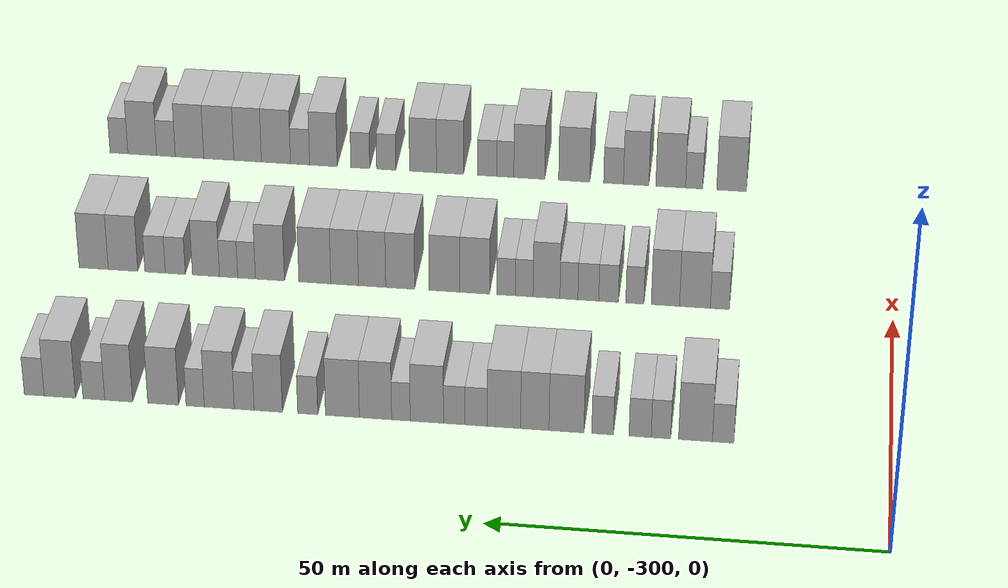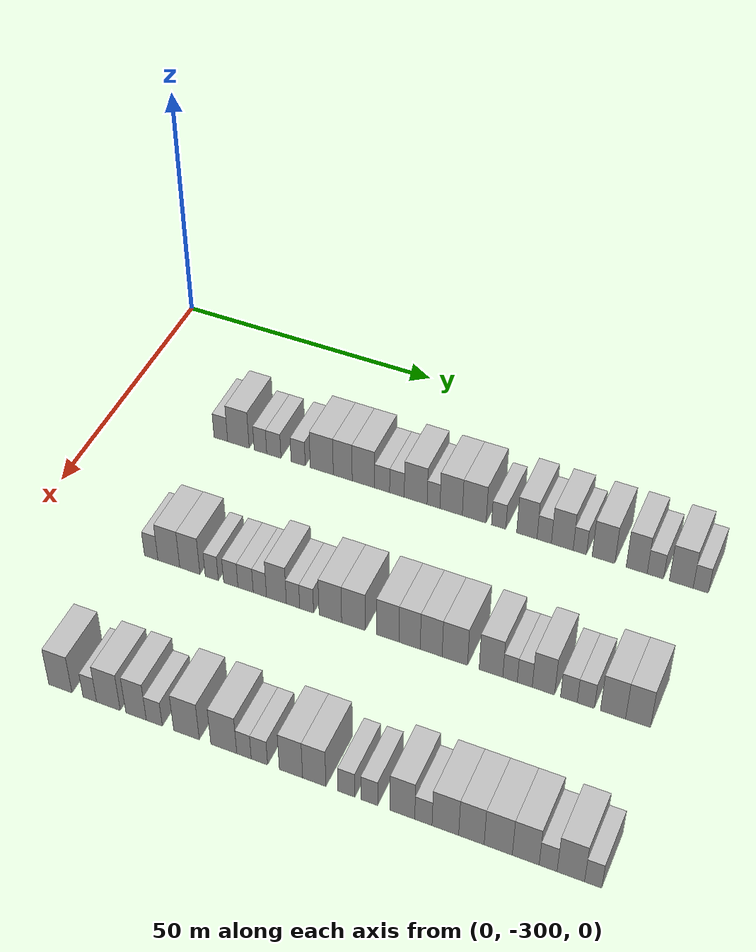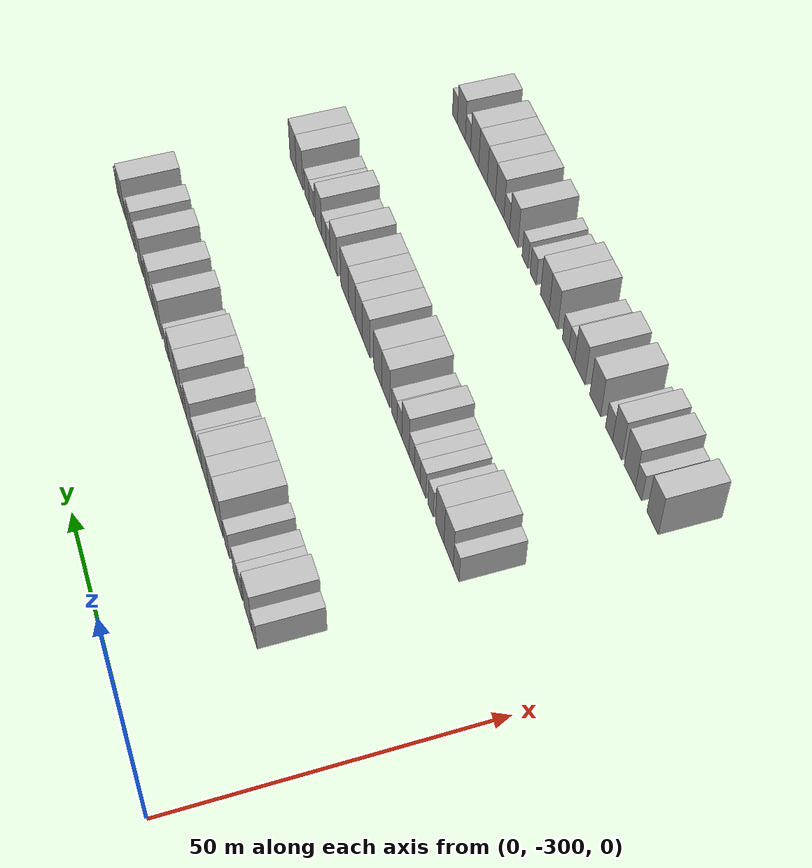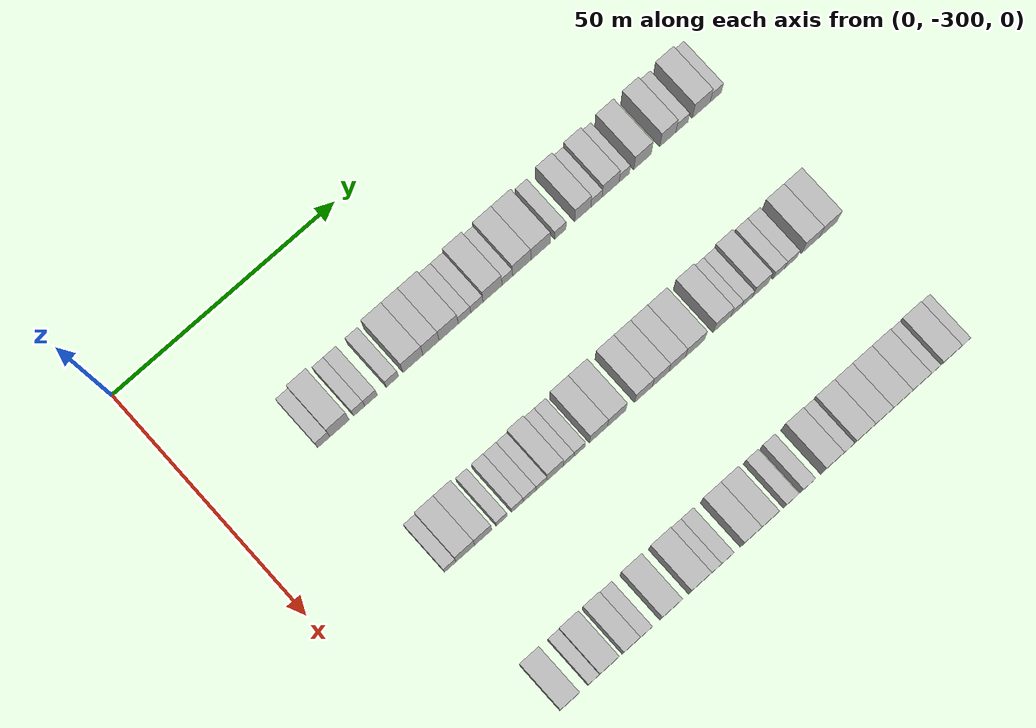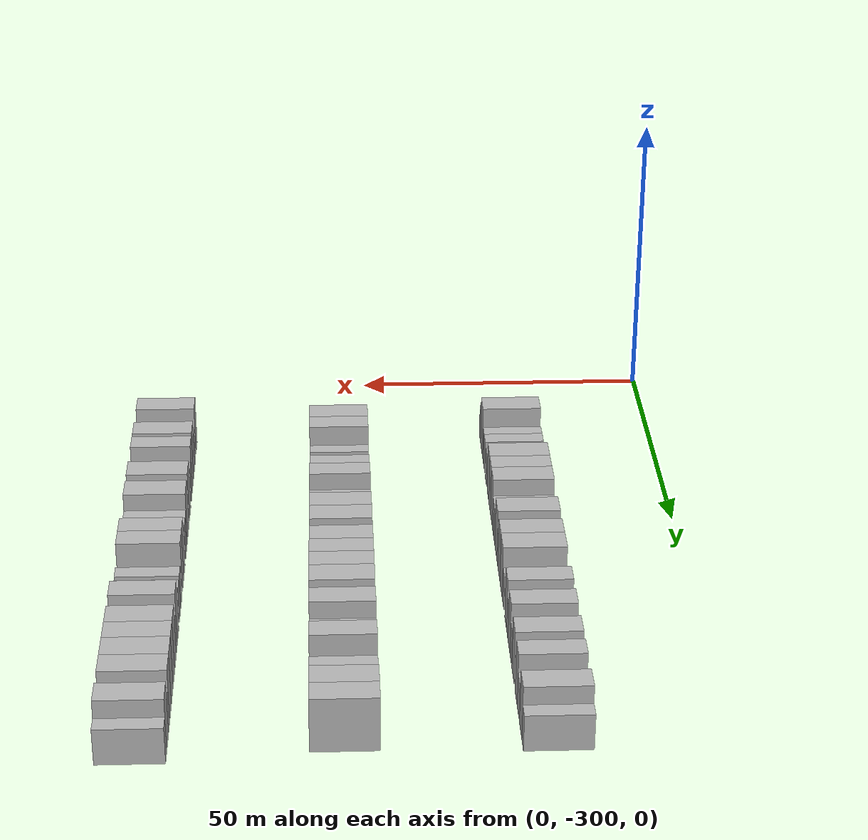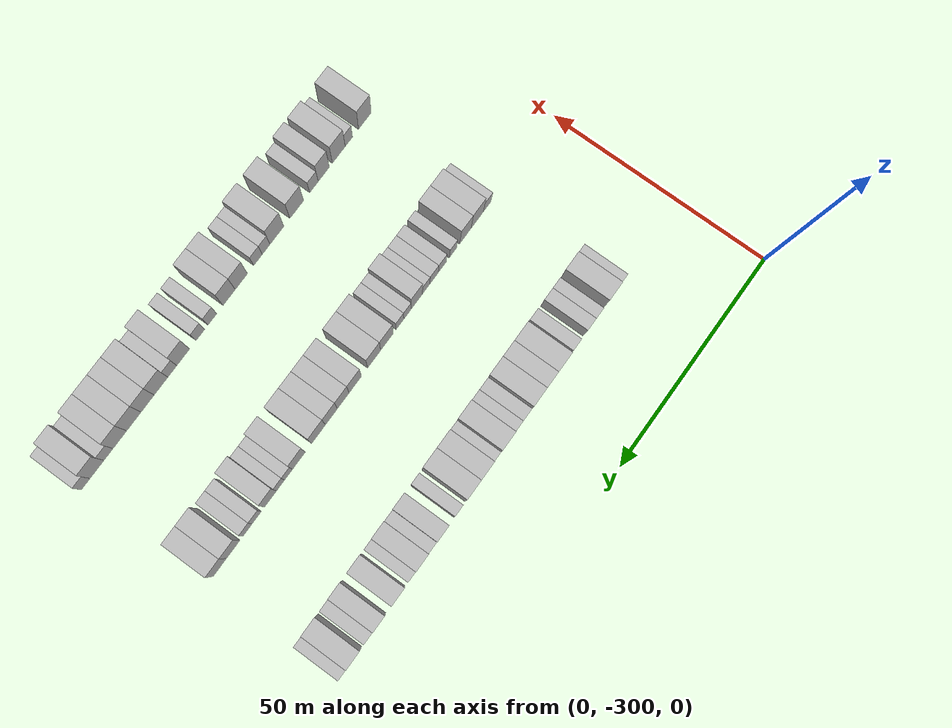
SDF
<sdf version="1.6">
 <world name="default">
  <model name="building_1">
   <static>1</static>
   <pose>25.0000 -278.6307 0 0.000000 0.000000 0.000000</pose>
   <link name="link">
    <pose>0 0 3.00 0 0 0</pose>
    <collision name="collision"><geometry><box><size>10.0000 2.7387 6.0000</size></box></geometry></collision>
    <visual name="visual">
     <cast_shadows>0</cast_shadows>
     <geometry><box><size>10.0000 2.7387 6.0000</size></box></geometry>
     <material>
      <script>
       <uri>model://HANNAS_wall/materials/scripts</uri>
       <uri>model://HANNAS_wall/materials/textures</uri>
       <name>vrc/HANNAS_wall</name>
      </script>
     </material>
    </visual>
   </link>
  </model>
  <model name="building_2">
   <static>1</static>
   <pose>25.0000 -275.0952 0 0.000000 0.000000 0.000000</pose>
   <link name="link">
    <pose>0 0 4.50 0 0 0</pose>
    <collision name="collision"><geometry><box><size>10.0000 4.3321 9.0000</size></box></geometry></collision>
    <visual name="visual">
     <cast_shadows>0</cast_shadows>
     <geometry><box><size>10.0000 4.3321 9.0000</size></box></geometry>
     <material>
      <script>
       <uri>model://HANNAS_wall/materials/scripts</uri>
       <uri>model://HANNAS_wall/materials/textures</uri>
       <name>vrc/HANNAS_wall</name>
      </script>
     </material>
    </visual>
   </link>
  </model>
  <model name="building_3">
   <static>1</static>
   <pose>25.0000 -270.6783 0 0.000000 0.000000 0.000000</pose>
   <link name="link">
    <pose>0 0 3.00 0 0 0</pose>
    <collision name="collision"><geometry><box><size>10.0000 2.5017 6.0000</size></box></geometry></collision>
    <visual name="visual">
     <cast_shadows>0</cast_shadows>
     <geometry><box><size>10.0000 2.5017 6.0000</size></box></geometry>
     <material>
      <script>
       <uri>model://HANNAS_wall/materials/scripts</uri>
       <uri>model://HANNAS_wall/materials/textures</uri>
       <name>vrc/HANNAS_wall</name>
      </script>
     </material>
    </visual>
   </link>
  </model>
  <model name="building_4">
   <static>1</static>
   <pose>25.0000 -268.0065 0 0.000000 0.000000 0.000000</pose>
   <link name="link">
    <pose>0 0 3.00 0 0 0</pose>
    <collision name="collision"><geometry><box><size>10.0000 2.8418 6.0000</size></box></geometry></collision>
    <visual name="visual">
     <cast_shadows>0</cast_shadows>
     <geometry><box><size>10.0000 2.8418 6.0000</size></box></geometry>
     <material>
      <script>
       <uri>model://HANNAS_wall/materials/scripts</uri>
       <uri>model://HANNAS_wall/materials/textures</uri>
       <name>vrc/HANNAS_wall</name>
      </script>
     </material>
    </visual>
   </link>
  </model>
  <model name="building_5">
   <static>1</static>
   <pose>25.0000 -263.1938 0 0.000000 0.000000 0.000000</pose>
   <link name="link">
    <pose>0 0 3.00 0 0 0</pose>
    <collision name="collision"><geometry><box><size>10.0000 2.7837 6.0000</size></box></geometry></collision>
    <visual name="visual">
     <cast_shadows>0</cast_shadows>
     <geometry><box><size>10.0000 2.7837 6.0000</size></box></geometry>
     <material>
      <script>
       <uri>model://HANNAS_wall/materials/scripts</uri>
       <uri>model://HANNAS_wall/materials/textures</uri>
       <name>vrc/HANNAS_wall</name>
      </script>
     </material>
    </visual>
   </link>
  </model>
  <model name="building_6">
   <static>1</static>
   <pose>25.0000 -258.5552 0 0.000000 0.000000 0.000000</pose>
   <link name="link">
    <pose>0 0 4.50 0 0 0</pose>
    <collision name="collision"><geometry><box><size>10.0000 4.4935 9.0000</size></box></geometry></collision>
    <visual name="visual">
     <cast_shadows>0</cast_shadows>
     <geometry><box><size>10.0000 4.4935 9.0000</size></box></geometry>
     <material>
      <script>
       <uri>model://HANNAS_wall/materials/scripts</uri>
       <uri>model://HANNAS_wall/materials/textures</uri>
       <name>vrc/HANNAS_wall</name>
      </script>
     </material>
    </visual>
   </link>
  </model>
  <model name="building_7">
   <static>1</static>
   <pose>25.0000 -254.4712 0 0.000000 0.000000 0.000000</pose>
   <link name="link">
    <pose>0 0 4.50 0 0 0</pose>
    <collision name="collision"><geometry><box><size>10.0000 3.6745 9.0000</size></box></geometry></collision>
    <visual name="visual">
     <cast_shadows>0</cast_shadows>
     <geometry><box><size>10.0000 3.6745 9.0000</size></box></geometry>
     <material>
      <script>
       <uri>model://HANNAS_wall/materials/scripts</uri>
       <uri>model://HANNAS_wall/materials/textures</uri>
       <name>vrc/HANNAS_wall</name>
      </script>
     </material>
    </visual>
   </link>
  </model>
  <model name="building_8">
   <static>1</static>
   <pose>25.0000 -250.4706 0 0.000000 0.000000 0.000000</pose>
   <link name="link">
    <pose>0 0 4.50 0 0 0</pose>
    <collision name="collision"><geometry><box><size>10.0000 4.3267 9.0000</size></box></geometry></collision>
    <visual name="visual">
     <cast_shadows>0</cast_shadows>
     <geometry><box><size>10.0000 4.3267 9.0000</size></box></geometry>
     <material>
      <script>
       <uri>model://HANNAS_wall/materials/scripts</uri>
       <uri>model://HANNAS_wall/materials/textures</uri>
       <name>vrc/HANNAS_wall</name>
      </script>
     </material>
    </visual>
   </link>
  </model>
  <model name="building_9">
   <static>1</static>
   <pose>25.0000 -246.8789 0 0.000000 0.000000 0.000000</pose>
   <link name="link">
    <pose>0 0 3.00 0 0 0</pose>
    <collision name="collision"><geometry><box><size>10.0000 2.8567 6.0000</size></box></geometry></collision>
    <visual name="visual">
     <cast_shadows>0</cast_shadows>
     <geometry><box><size>10.0000 2.8567 6.0000</size></box></geometry>
     <material>
      <script>
       <uri>model://HANNAS_wall/materials/scripts</uri>
       <uri>model://HANNAS_wall/materials/textures</uri>
       <name>vrc/HANNAS_wall</name>
      </script>
     </material>
    </visual>
   </link>
  </model>
  <model name="building_10">
   <static>1</static>
   <pose>25.0000 -244.0544 0 0.000000 0.000000 0.000000</pose>
   <link name="link">
    <pose>0 0 3.00 0 0 0</pose>
    <collision name="collision"><geometry><box><size>10.0000 2.7923 6.0000</size></box></geometry></collision>
    <visual name="visual">
     <cast_shadows>0</cast_shadows>
     <geometry><box><size>10.0000 2.7923 6.0000</size></box></geometry>
     <material>
      <script>
       <uri>model://HANNAS_wall/materials/scripts</uri>
       <uri>model://HANNAS_wall/materials/textures</uri>
       <name>vrc/HANNAS_wall</name>
      </script>
     </material>
    </visual>
   </link>
  </model>
  <model name="building_11">
   <static>1</static>
   <pose>25.0000 -240.4963 0 0.000000 0.000000 0.000000</pose>
   <link name="link">
    <pose>0 0 4.50 0 0 0</pose>
    <collision name="collision"><geometry><box><size>10.0000 4.3238 9.0000</size></box></geometry></collision>
    <visual name="visual">
     <cast_shadows>0</cast_shadows>
     <geometry><box><size>10.0000 4.3238 9.0000</size></box></geometry>
     <material>
      <script>
       <uri>model://HANNAS_wall/materials/scripts</uri>
       <uri>model://HANNAS_wall/materials/textures</uri>
       <name>vrc/HANNAS_wall</name>
      </script>
     </material>
    </visual>
   </link>
  </model>
  <model name="building_12">
   <static>1</static>
   <pose>25.0000 -237.1206 0 0.000000 0.000000 0.000000</pose>
   <link name="link">
    <pose>0 0 3.00 0 0 0</pose>
    <collision name="collision"><geometry><box><size>10.0000 2.4275 6.0000</size></box></geometry></collision>
    <visual name="visual">
     <cast_shadows>0</cast_shadows>
     <geometry><box><size>10.0000 2.4275 6.0000</size></box></geometry>
     <material>
      <script>
       <uri>model://HANNAS_wall/materials/scripts</uri>
       <uri>model://HANNAS_wall/materials/textures</uri>
       <name>vrc/HANNAS_wall</name>
      </script>
     </material>
    </visual>
   </link>
  </model>
  <model name="building_13">
   <static>1</static>
   <pose>25.0000 -233.8196 0 0.000000 0.000000 0.000000</pose>
   <link name="link">
    <pose>0 0 4.50 0 0 0</pose>
    <collision name="collision"><geometry><box><size>10.0000 4.1745 9.0000</size></box></geometry></collision>
    <visual name="visual">
     <cast_shadows>0</cast_shadows>
     <geometry><box><size>10.0000 4.1745 9.0000</size></box></geometry>
     <material>
      <script>
       <uri>model://HANNAS_wall/materials/scripts</uri>
       <uri>model://HANNAS_wall/materials/textures</uri>
       <name>vrc/HANNAS_wall</name>
      </script>
     </material>
    </visual>
   </link>
  </model>
  <model name="building_14">
   <static>1</static>
   <pose>25.0000 -229.5177 0 0.000000 0.000000 0.000000</pose>
   <link name="link">
    <pose>0 0 4.50 0 0 0</pose>
    <collision name="collision"><geometry><box><size>10.0000 4.4293 9.0000</size></box></geometry></collision>
    <visual name="visual">
     <cast_shadows>0</cast_shadows>
     <geometry><box><size>10.0000 4.4293 9.0000</size></box></geometry>
     <material>
      <script>
       <uri>model://HANNAS_wall/materials/scripts</uri>
       <uri>model://HANNAS_wall/materials/textures</uri>
       <name>vrc/HANNAS_wall</name>
      </script>
     </material>
    </visual>
   </link>
  </model>
  <model name="building_15">
   <static>1</static>
   <pose>25.0000 -224.9879 0 0.000000 0.000000 0.000000</pose>
   <link name="link">
    <pose>0 0 3.00 0 0 0</pose>
    <collision name="collision"><geometry><box><size>10.0000 2.6302 6.0000</size></box></geometry></collision>
    <visual name="visual">
     <cast_shadows>0</cast_shadows>
     <geometry><box><size>10.0000 2.6302 6.0000</size></box></geometry>
     <material>
      <script>
       <uri>model://HANNAS_wall/materials/scripts</uri>
       <uri>model://HANNAS_wall/materials/textures</uri>
       <name>vrc/HANNAS_wall</name>
      </script>
     </material>
    </visual>
   </link>
  </model>
  <model name="building_16">
   <static>1</static>
   <pose>25.0000 -219.8191 0 0.000000 0.000000 0.000000</pose>
   <link name="link">
    <pose>0 0 4.50 0 0 0</pose>
    <collision name="collision"><geometry><box><size>10.0000 3.7073 9.0000</size></box></geometry></collision>
    <visual name="visual">
     <cast_shadows>0</cast_shadows>
     <geometry><box><size>10.0000 3.7073 9.0000</size></box></geometry>
     <material>
      <script>
       <uri>model://HANNAS_wall/materials/scripts</uri>
       <uri>model://HANNAS_wall/materials/textures</uri>
       <name>vrc/HANNAS_wall</name>
      </script>
     </material>
    </visual>
   </link>
  </model>
  <model name="building_17">
   <static>1</static>
   <pose>25.0000 -216.6659 0 0.000000 0.000000 0.000000</pose>
   <link name="link">
    <pose>0 0 3.00 0 0 0</pose>
    <collision name="collision"><geometry><box><size>10.0000 2.5991 6.0000</size></box></geometry></collision>
    <visual name="visual">
     <cast_shadows>0</cast_shadows>
     <geometry><box><size>10.0000 2.5991 6.0000</size></box></geometry>
     <material>
      <script>
       <uri>model://HANNAS_wall/materials/scripts</uri>
       <uri>model://HANNAS_wall/materials/textures</uri>
       <name>vrc/HANNAS_wall</name>
      </script>
     </material>
    </visual>
   </link>
  </model>
  <model name="building_18">
   <static>1</static>
   <pose>25.0000 -213.4011 0 0.000000 0.000000 0.000000</pose>
   <link name="link">
    <pose>0 0 4.50 0 0 0</pose>
    <collision name="collision"><geometry><box><size>10.0000 3.9306 9.0000</size></box></geometry></collision>
    <visual name="visual">
     <cast_shadows>0</cast_shadows>
     <geometry><box><size>10.0000 3.9306 9.0000</size></box></geometry>
     <material>
      <script>
       <uri>model://HANNAS_wall/materials/scripts</uri>
       <uri>model://HANNAS_wall/materials/textures</uri>
       <name>vrc/HANNAS_wall</name>
      </script>
     </material>
    </visual>
   </link>
  </model>
  <model name="building_19">
   <static>1</static>
   <pose>25.0000 -210.2322 0 0.000000 0.000000 0.000000</pose>
   <link name="link">
    <pose>0 0 3.00 0 0 0</pose>
    <collision name="collision"><geometry><box><size>10.0000 2.4073 6.0000</size></box></geometry></collision>
    <visual name="visual">
     <cast_shadows>0</cast_shadows>
     <geometry><box><size>10.0000 2.4073 6.0000</size></box></geometry>
     <material>
      <script>
       <uri>model://HANNAS_wall/materials/scripts</uri>
       <uri>model://HANNAS_wall/materials/textures</uri>
       <name>vrc/HANNAS_wall</name>
      </script>
     </material>
    </visual>
   </link>
  </model>
  <model name="building_20">
   <static>1</static>
   <pose>25.0000 -205.9997 0 0.000000 0.000000 0.000000</pose>
   <link name="link">
    <pose>0 0 4.50 0 0 0</pose>
    <collision name="collision"><geometry><box><size>10.0000 4.0576 9.0000</size></box></geometry></collision>
    <visual name="visual">
     <cast_shadows>0</cast_shadows>
     <geometry><box><size>10.0000 4.0576 9.0000</size></box></geometry>
     <material>
      <script>
       <uri>model://HANNAS_wall/materials/scripts</uri>
       <uri>model://HANNAS_wall/materials/textures</uri>
       <name>vrc/HANNAS_wall</name>
      </script>
     </material>
    </visual>
   </link>
  </model>
  <model name="building_21">
   <static>1</static>
   <pose>25.0000 -200.1270 0 0.000000 0.000000 0.000000</pose>
   <link name="link">
    <pose>0 0 4.50 0 0 0</pose>
    <collision name="collision"><geometry><box><size>10.0000 3.6879 9.0000</size></box></geometry></collision>
    <visual name="visual">
     <cast_shadows>0</cast_shadows>
     <geometry><box><size>10.0000 3.6879 9.0000</size></box></geometry>
     <material>
      <script>
       <uri>model://HANNAS_wall/materials/scripts</uri>
       <uri>model://HANNAS_wall/materials/textures</uri>
       <name>vrc/HANNAS_wall</name>
      </script>
     </material>
    </visual>
   </link>
  </model>
  <model name="building_22">
   <static>1</static>
   <pose>25.0000 -196.8470 0 0.000000 0.000000 0.000000</pose>
   <link name="link">
    <pose>0 0 3.00 0 0 0</pose>
    <collision name="collision"><geometry><box><size>10.0000 2.8722 6.0000</size></box></geometry></collision>
    <visual name="visual">
     <cast_shadows>0</cast_shadows>
     <geometry><box><size>10.0000 2.8722 6.0000</size></box></geometry>
     <material>
      <script>
       <uri>model://HANNAS_wall/materials/scripts</uri>
       <uri>model://HANNAS_wall/materials/textures</uri>
       <name>vrc/HANNAS_wall</name>
      </script>
     </material>
    </visual>
   </link>
  </model>
  <model name="building_23">
   <static>1</static>
   <pose>25.0000 -192.3407 0 0.000000 0.000000 0.000000</pose>
   <link name="link">
    <pose>0 0 4.50 0 0 0</pose>
    <collision name="collision"><geometry><box><size>10.0000 4.1403 9.0000</size></box></geometry></collision>
    <visual name="visual">
     <cast_shadows>0</cast_shadows>
     <geometry><box><size>10.0000 4.1403 9.0000</size></box></geometry>
     <material>
      <script>
       <uri>model://HANNAS_wall/materials/scripts</uri>
       <uri>model://HANNAS_wall/materials/textures</uri>
       <name>vrc/HANNAS_wall</name>
      </script>
     </material>
    </visual>
   </link>
  </model>
  <model name="building_24">
   <static>1</static>
   <pose>25.0000 -188.9480 0 0.000000 0.000000 0.000000</pose>
   <link name="link">
    <pose>0 0 3.00 0 0 0</pose>
    <collision name="collision"><geometry><box><size>10.0000 2.6451 6.0000</size></box></geometry></collision>
    <visual name="visual">
     <cast_shadows>0</cast_shadows>
     <geometry><box><size>10.0000 2.6451 6.0000</size></box></geometry>
     <material>
      <script>
       <uri>model://HANNAS_wall/materials/scripts</uri>
       <uri>model://HANNAS_wall/materials/textures</uri>
       <name>vrc/HANNAS_wall</name>
      </script>
     </material>
    </visual>
   </link>
  </model>
  <model name="building_144">
   <static>1</static>
   <pose>55.0000 -276.7090 0 0.000000 0.000000 0.000000</pose>
   <link name="link">
    <pose>0 0 3.00 0 0 0</pose>
    <collision name="collision"><geometry><box><size>10.0000 2.5820 6.0000</size></box></geometry></collision>
    <visual name="visual">
     <cast_shadows>0</cast_shadows>
     <geometry><box><size>10.0000 2.5820 6.0000</size></box></geometry>
     <material>
      <script>
       <uri>model://HANNAS_wall/materials/scripts</uri>
       <uri>model://HANNAS_wall/materials/textures</uri>
       <name>vrc/HANNAS_wall</name>
      </script>
     </material>
    </visual>
   </link>
  </model>
  <model name="building_145">
   <static>1</static>
   <pose>55.0000 -273.3320 0 0.000000 0.000000 0.000000</pose>
   <link name="link">
    <pose>0 0 4.50 0 0 0</pose>
    <collision name="collision"><geometry><box><size>10.0000 4.1720 9.0000</size></box></geometry></collision>
    <visual name="visual">
     <cast_shadows>0</cast_shadows>
     <geometry><box><size>10.0000 4.1720 9.0000</size></box></geometry>
     <material>
      <script>
       <uri>model://HANNAS_wall/materials/scripts</uri>
       <uri>model://HANNAS_wall/materials/textures</uri>
       <name>vrc/HANNAS_wall</name>
      </script>
     </material>
    </visual>
   </link>
  </model>
  <model name="building_146">
   <static>1</static>
   <pose>55.0000 -269.3282 0 0.000000 0.000000 0.000000</pose>
   <link name="link">
    <pose>0 0 4.50 0 0 0</pose>
    <collision name="collision"><geometry><box><size>10.0000 3.8357 9.0000</size></box></geometry></collision>
    <visual name="visual">
     <cast_shadows>0</cast_shadows>
     <geometry><box><size>10.0000 3.8357 9.0000</size></box></geometry>
     <material>
      <script>
       <uri>model://HANNAS_wall/materials/scripts</uri>
       <uri>model://HANNAS_wall/materials/textures</uri>
       <name>vrc/HANNAS_wall</name>
      </script>
     </material>
    </visual>
   </link>
  </model>
  <model name="building_147">
   <static>1</static>
   <pose>55.0000 -265.1782 0 0.000000 0.000000 0.000000</pose>
   <link name="link">
    <pose>0 0 3.00 0 0 0</pose>
    <collision name="collision"><geometry><box><size>10.0000 2.4644 6.0000</size></box></geometry></collision>
    <visual name="visual">
     <cast_shadows>0</cast_shadows>
     <geometry><box><size>10.0000 2.4644 6.0000</size></box></geometry>
     <material>
      <script>
       <uri>model://HANNAS_wall/materials/scripts</uri>
       <uri>model://HANNAS_wall/materials/textures</uri>
       <name>vrc/HANNAS_wall</name>
      </script>
     </material>
    </visual>
   </link>
  </model>
  <model name="building_148">
   <static>1</static>
   <pose>55.0000 -261.6112 0 0.000000 0.000000 0.000000</pose>
   <link name="link">
    <pose>0 0 3.00 0 0 0</pose>
    <collision name="collision"><geometry><box><size>10.0000 2.6696 6.0000</size></box></geometry></collision>
    <visual name="visual">
     <cast_shadows>0</cast_shadows>
     <geometry><box><size>10.0000 2.6696 6.0000</size></box></geometry>
     <material>
      <script>
       <uri>model://HANNAS_wall/materials/scripts</uri>
       <uri>model://HANNAS_wall/materials/textures</uri>
       <name>vrc/HANNAS_wall</name>
      </script>
     </material>
    </visual>
   </link>
  </model>
  <model name="building_149">
   <static>1</static>
   <pose>55.0000 -258.8508 0 0.000000 0.000000 0.000000</pose>
   <link name="link">
    <pose>0 0 3.00 0 0 0</pose>
    <collision name="collision"><geometry><box><size>10.0000 2.8511 6.0000</size></box></geometry></collision>
    <visual name="visual">
     <cast_shadows>0</cast_shadows>
     <geometry><box><size>10.0000 2.8511 6.0000</size></box></geometry>
     <material>
      <script>
       <uri>model://HANNAS_wall/materials/scripts</uri>
       <uri>model://HANNAS_wall/materials/textures</uri>
       <name>vrc/HANNAS_wall</name>
      </script>
     </material>
    </visual>
   </link>
  </model>
  <model name="building_150">
   <static>1</static>
   <pose>55.0000 -256.1968 0 0.000000 0.000000 0.000000</pose>
   <link name="link">
    <pose>0 0 3.00 0 0 0</pose>
    <collision name="collision"><geometry><box><size>10.0000 2.4569 6.0000</size></box></geometry></collision>
    <visual name="visual">
     <cast_shadows>0</cast_shadows>
     <geometry><box><size>10.0000 2.4569 6.0000</size></box></geometry>
     <material>
      <script>
       <uri>model://HANNAS_wall/materials/scripts</uri>
       <uri>model://HANNAS_wall/materials/textures</uri>
       <name>vrc/HANNAS_wall</name>
      </script>
     </material>
    </visual>
   </link>
  </model>
  <model name="building_151">
   <static>1</static>
   <pose>55.0000 -253.1367 0 0.000000 0.000000 0.000000</pose>
   <link name="link">
    <pose>0 0 4.50 0 0 0</pose>
    <collision name="collision"><geometry><box><size>10.0000 3.6632 9.0000</size></box></geometry></collision>
    <visual name="visual">
     <cast_shadows>0</cast_shadows>
     <geometry><box><size>10.0000 3.6632 9.0000</size></box></geometry>
     <material>
      <script>
       <uri>model://HANNAS_wall/materials/scripts</uri>
       <uri>model://HANNAS_wall/materials/textures</uri>
       <name>vrc/HANNAS_wall</name>
      </script>
     </material>
    </visual>
   </link>
  </model>
  <model name="building_152">
   <static>1</static>
   <pose>55.0000 -250.0861 0 0.000000 0.000000 0.000000</pose>
   <link name="link">
    <pose>0 0 3.00 0 0 0</pose>
    <collision name="collision"><geometry><box><size>10.0000 2.4380 6.0000</size></box></geometry></collision>
    <visual name="visual">
     <cast_shadows>0</cast_shadows>
     <geometry><box><size>10.0000 2.4380 6.0000</size></box></geometry>
     <material>
      <script>
       <uri>model://HANNAS_wall/materials/scripts</uri>
       <uri>model://HANNAS_wall/materials/textures</uri>
       <name>vrc/HANNAS_wall</name>
      </script>
     </material>
    </visual>
   </link>
  </model>
  <model name="building_153">
   <static>1</static>
   <pose>55.0000 -247.6021 0 0.000000 0.000000 0.000000</pose>
   <link name="link">
    <pose>0 0 3.00 0 0 0</pose>
    <collision name="collision"><geometry><box><size>10.0000 2.5300 6.0000</size></box></geometry></collision>
    <visual name="visual">
     <cast_shadows>0</cast_shadows>
     <geometry><box><size>10.0000 2.5300 6.0000</size></box></geometry>
     <material>
      <script>
       <uri>model://HANNAS_wall/materials/scripts</uri>
       <uri>model://HANNAS_wall/materials/textures</uri>
       <name>vrc/HANNAS_wall</name>
      </script>
     </material>
    </visual>
   </link>
  </model>
  <model name="building_154">
   <static>1</static>
   <pose>55.0000 -243.2986 0 0.000000 0.000000 0.000000</pose>
   <link name="link">
    <pose>0 0 4.50 0 0 0</pose>
    <collision name="collision"><geometry><box><size>10.0000 4.0771 9.0000</size></box></geometry></collision>
    <visual name="visual">
     <cast_shadows>0</cast_shadows>
     <geometry><box><size>10.0000 4.0771 9.0000</size></box></geometry>
     <material>
      <script>
       <uri>model://HANNAS_wall/materials/scripts</uri>
       <uri>model://HANNAS_wall/materials/textures</uri>
       <name>vrc/HANNAS_wall</name>
      </script>
     </material>
    </visual>
   </link>
  </model>
  <model name="building_155">
   <static>1</static>
   <pose>55.0000 -239.1530 0 0.000000 0.000000 0.000000</pose>
   <link name="link">
    <pose>0 0 4.50 0 0 0</pose>
    <collision name="collision"><geometry><box><size>10.0000 4.2141 9.0000</size></box></geometry></collision>
    <visual name="visual">
     <cast_shadows>0</cast_shadows>
     <geometry><box><size>10.0000 4.2141 9.0000</size></box></geometry>
     <material>
      <script>
       <uri>model://HANNAS_wall/materials/scripts</uri>
       <uri>model://HANNAS_wall/materials/textures</uri>
       <name>vrc/HANNAS_wall</name>
      </script>
     </material>
    </visual>
   </link>
  </model>
  <model name="building_156">
   <static>1</static>
   <pose>55.0000 -233.0519 0 0.000000 0.000000 0.000000</pose>
   <link name="link">
    <pose>0 0 4.50 0 0 0</pose>
    <collision name="collision"><geometry><box><size>10.0000 3.9881 9.0000</size></box></geometry></collision>
    <visual name="visual">
     <cast_shadows>0</cast_shadows>
     <geometry><box><size>10.0000 3.9881 9.0000</size></box></geometry>
     <material>
      <script>
       <uri>model://HANNAS_wall/materials/scripts</uri>
       <uri>model://HANNAS_wall/materials/textures</uri>
       <name>vrc/HANNAS_wall</name>
      </script>
     </material>
    </visual>
   </link>
  </model>
  <model name="building_157">
   <static>1</static>
   <pose>55.0000 -229.1768 0 0.000000 0.000000 0.000000</pose>
   <link name="link">
    <pose>0 0 4.50 0 0 0</pose>
    <collision name="collision"><geometry><box><size>10.0000 3.7621 9.0000</size></box></geometry></collision>
    <visual name="visual">
     <cast_shadows>0</cast_shadows>
     <geometry><box><size>10.0000 3.7621 9.0000</size></box></geometry>
     <material>
      <script>
       <uri>model://HANNAS_wall/materials/scripts</uri>
       <uri>model://HANNAS_wall/materials/textures</uri>
       <name>vrc/HANNAS_wall</name>
      </script>
     </material>
    </visual>
   </link>
  </model>
  <model name="building_158">
   <static>1</static>
   <pose>55.0000 -225.3812 0 0.000000 0.000000 0.000000</pose>
   <link name="link">
    <pose>0 0 4.50 0 0 0</pose>
    <collision name="collision"><geometry><box><size>10.0000 3.8291 9.0000</size></box></geometry></collision>
    <visual name="visual">
     <cast_shadows>0</cast_shadows>
     <geometry><box><size>10.0000 3.8291 9.0000</size></box></geometry>
     <material>
      <script>
       <uri>model://HANNAS_wall/materials/scripts</uri>
       <uri>model://HANNAS_wall/materials/textures</uri>
       <name>vrc/HANNAS_wall</name>
      </script>
     </material>
    </visual>
   </link>
  </model>
  <model name="building_159">
   <static>1</static>
   <pose>55.0000 -221.2616 0 0.000000 0.000000 0.000000</pose>
   <link name="link">
    <pose>0 0 4.50 0 0 0</pose>
    <collision name="collision"><geometry><box><size>10.0000 4.4102 9.0000</size></box></geometry></collision>
    <visual name="visual">
     <cast_shadows>0</cast_shadows>
     <geometry><box><size>10.0000 4.4102 9.0000</size></box></geometry>
     <material>
      <script>
       <uri>model://HANNAS_wall/materials/scripts</uri>
       <uri>model://HANNAS_wall/materials/textures</uri>
       <name>vrc/HANNAS_wall</name>
      </script>
     </material>
    </visual>
   </link>
  </model>
  <model name="building_160">
   <static>1</static>
   <pose>55.0000 -215.0334 0 0.000000 0.000000 0.000000</pose>
   <link name="link">
    <pose>0 0 4.50 0 0 0</pose>
    <collision name="collision"><geometry><box><size>10.0000 4.0463 9.0000</size></box></geometry></collision>
    <visual name="visual">
     <cast_shadows>0</cast_shadows>
     <geometry><box><size>10.0000 4.0463 9.0000</size></box></geometry>
     <material>
      <script>
       <uri>model://HANNAS_wall/materials/scripts</uri>
       <uri>model://HANNAS_wall/materials/textures</uri>
       <name>vrc/HANNAS_wall</name>
      </script>
     </material>
    </visual>
   </link>
  </model>
  <model name="building_161">
   <static>1</static>
   <pose>55.0000 -211.7778 0 0.000000 0.000000 0.000000</pose>
   <link name="link">
    <pose>0 0 3.00 0 0 0</pose>
    <collision name="collision"><geometry><box><size>10.0000 2.4649 6.0000</size></box></geometry></collision>
    <visual name="visual">
     <cast_shadows>0</cast_shadows>
     <geometry><box><size>10.0000 2.4649 6.0000</size></box></geometry>
     <material>
      <script>
       <uri>model://HANNAS_wall/materials/scripts</uri>
       <uri>model://HANNAS_wall/materials/textures</uri>
       <name>vrc/HANNAS_wall</name>
      </script>
     </material>
    </visual>
   </link>
  </model>
  <model name="building_162">
   <static>1</static>
   <pose>55.0000 -209.2771 0 0.000000 0.000000 0.000000</pose>
   <link name="link">
    <pose>0 0 3.00 0 0 0</pose>
    <collision name="collision"><geometry><box><size>10.0000 2.5365 6.0000</size></box></geometry></collision>
    <visual name="visual">
     <cast_shadows>0</cast_shadows>
     <geometry><box><size>10.0000 2.5365 6.0000</size></box></geometry>
     <material>
      <script>
       <uri>model://HANNAS_wall/materials/scripts</uri>
       <uri>model://HANNAS_wall/materials/textures</uri>
       <name>vrc/HANNAS_wall</name>
      </script>
     </material>
    </visual>
   </link>
  </model>
  <model name="building_163">
   <static>1</static>
   <pose>55.0000 -206.1275 0 0.000000 0.000000 0.000000</pose>
   <link name="link">
    <pose>0 0 4.50 0 0 0</pose>
    <collision name="collision"><geometry><box><size>10.0000 3.7627 9.0000</size></box></geometry></collision>
    <visual name="visual">
     <cast_shadows>0</cast_shadows>
     <geometry><box><size>10.0000 3.7627 9.0000</size></box></geometry>
     <material>
      <script>
       <uri>model://HANNAS_wall/materials/scripts</uri>
       <uri>model://HANNAS_wall/materials/textures</uri>
       <name>vrc/HANNAS_wall</name>
      </script>
     </material>
    </visual>
   </link>
  </model>
  <model name="building_164">
   <static>1</static>
   <pose>55.0000 -201.8481 0 0.000000 0.000000 0.000000</pose>
   <link name="link">
    <pose>0 0 3.00 0 0 0</pose>
    <collision name="collision"><geometry><box><size>10.0000 2.7962 6.0000</size></box></geometry></collision>
    <visual name="visual">
     <cast_shadows>0</cast_shadows>
     <geometry><box><size>10.0000 2.7962 6.0000</size></box></geometry>
     <material>
      <script>
       <uri>model://HANNAS_wall/materials/scripts</uri>
       <uri>model://HANNAS_wall/materials/textures</uri>
       <name>vrc/HANNAS_wall</name>
      </script>
     </material>
    </visual>
   </link>
  </model>
  <model name="building_165">
   <static>1</static>
   <pose>55.0000 -199.0285 0 0.000000 0.000000 0.000000</pose>
   <link name="link">
    <pose>0 0 3.00 0 0 0</pose>
    <collision name="collision"><geometry><box><size>10.0000 2.8429 6.0000</size></box></geometry></collision>
    <visual name="visual">
     <cast_shadows>0</cast_shadows>
     <geometry><box><size>10.0000 2.8429 6.0000</size></box></geometry>
     <material>
      <script>
       <uri>model://HANNAS_wall/materials/scripts</uri>
       <uri>model://HANNAS_wall/materials/textures</uri>
       <name>vrc/HANNAS_wall</name>
      </script>
     </material>
    </visual>
   </link>
  </model>
  <model name="building_166">
   <static>1</static>
   <pose>55.0000 -194.5389 0 0.000000 0.000000 0.000000</pose>
   <link name="link">
    <pose>0 0 4.50 0 0 0</pose>
    <collision name="collision"><geometry><box><size>10.0000 4.1362 9.0000</size></box></geometry></collision>
    <visual name="visual">
     <cast_shadows>0</cast_shadows>
     <geometry><box><size>10.0000 4.1362 9.0000</size></box></geometry>
     <material>
      <script>
       <uri>model://HANNAS_wall/materials/scripts</uri>
       <uri>model://HANNAS_wall/materials/textures</uri>
       <name>vrc/HANNAS_wall</name>
      </script>
     </material>
    </visual>
   </link>
  </model>
  <model name="building_167">
   <static>1</static>
   <pose>55.0000 -190.4323 0 0.000000 0.000000 0.000000</pose>
   <link name="link">
    <pose>0 0 4.50 0 0 0</pose>
    <collision name="collision"><geometry><box><size>10.0000 4.0770 9.0000</size></box></geometry></collision>
    <visual name="visual">
     <cast_shadows>0</cast_shadows>
     <geometry><box><size>10.0000 4.0770 9.0000</size></box></geometry>
     <material>
      <script>
       <uri>model://HANNAS_wall/materials/scripts</uri>
       <uri>model://HANNAS_wall/materials/textures</uri>
       <name>vrc/HANNAS_wall</name>
      </script>
     </material>
    </visual>
   </link>
  </model>
  <model name="building_279">
   <static>1</static>
   <pose>85.0000 -276.8766 0 0.000000 0.000000 0.000000</pose>
   <link name="link">
    <pose>0 0 4.50 0 0 0</pose>
    <collision name="collision"><geometry><box><size>10.0000 4.2469 9.0000</size></box></geometry></collision>
    <visual name="visual">
     <cast_shadows>0</cast_shadows>
     <geometry><box><size>10.0000 4.2469 9.0000</size></box></geometry>
     <material>
      <script>
       <uri>model://HANNAS_wall/materials/scripts</uri>
       <uri>model://HANNAS_wall/materials/textures</uri>
       <name>vrc/HANNAS_wall</name>
      </script>
     </material>
    </visual>
   </link>
  </model>
  <model name="building_280">
   <static>1</static>
   <pose>85.0000 -271.5242 0 0.000000 0.000000 0.000000</pose>
   <link name="link">
    <pose>0 0 3.00 0 0 0</pose>
    <collision name="collision"><geometry><box><size>10.0000 2.4578 6.0000</size></box></geometry></collision>
    <visual name="visual">
     <cast_shadows>0</cast_shadows>
     <geometry><box><size>10.0000 2.4578 6.0000</size></box></geometry>
     <material>
      <script>
       <uri>model://HANNAS_wall/materials/scripts</uri>
       <uri>model://HANNAS_wall/materials/textures</uri>
       <name>vrc/HANNAS_wall</name>
      </script>
     </material>
    </visual>
   </link>
  </model>
  <model name="building_281">
   <static>1</static>
   <pose>85.0000 -268.1633 0 0.000000 0.000000 0.000000</pose>
   <link name="link">
    <pose>0 0 4.50 0 0 0</pose>
    <collision name="collision"><geometry><box><size>10.0000 4.2640 9.0000</size></box></geometry></collision>
    <visual name="visual">
     <cast_shadows>0</cast_shadows>
     <geometry><box><size>10.0000 4.2640 9.0000</size></box></geometry>
     <material>
      <script>
       <uri>model://HANNAS_wall/materials/scripts</uri>
       <uri>model://HANNAS_wall/materials/textures</uri>
       <name>vrc/HANNAS_wall</name>
      </script>
     </material>
    </visual>
   </link>
  </model>
  <model name="building_282">
   <static>1</static>
   <pose>85.0000 -263.2046 0 0.000000 0.000000 0.000000</pose>
   <link name="link">
    <pose>0 0 4.50 0 0 0</pose>
    <collision name="collision"><geometry><box><size>10.0000 3.6534 9.0000</size></box></geometry></collision>
    <visual name="visual">
     <cast_shadows>0</cast_shadows>
     <geometry><box><size>10.0000 3.6534 9.0000</size></box></geometry>
     <material>
      <script>
       <uri>model://HANNAS_wall/materials/scripts</uri>
       <uri>model://HANNAS_wall/materials/textures</uri>
       <name>vrc/HANNAS_wall</name>
      </script>
     </material>
    </visual>
   </link>
  </model>
  <model name="building_283">
   <static>1</static>
   <pose>85.0000 -259.9585 0 0.000000 0.000000 0.000000</pose>
   <link name="link">
    <pose>0 0 3.00 0 0 0</pose>
    <collision name="collision"><geometry><box><size>10.0000 2.8387 6.0000</size></box></geometry></collision>
    <visual name="visual">
     <cast_shadows>0</cast_shadows>
     <geometry><box><size>10.0000 2.8387 6.0000</size></box></geometry>
     <material>
      <script>
       <uri>model://HANNAS_wall/materials/scripts</uri>
       <uri>model://HANNAS_wall/materials/textures</uri>
       <name>vrc/HANNAS_wall</name>
      </script>
     </material>
    </visual>
   </link>
  </model>
  <model name="building_284">
   <static>1</static>
   <pose>85.0000 -254.2956 0 0.000000 0.000000 0.000000</pose>
   <link name="link">
    <pose>0 0 4.50 0 0 0</pose>
    <collision name="collision"><geometry><box><size>10.0000 4.4871 9.0000</size></box></geometry></collision>
    <visual name="visual">
     <cast_shadows>0</cast_shadows>
     <geometry><box><size>10.0000 4.4871 9.0000</size></box></geometry>
     <material>
      <script>
       <uri>model://HANNAS_wall/materials/scripts</uri>
       <uri>model://HANNAS_wall/materials/textures</uri>
       <name>vrc/HANNAS_wall</name>
      </script>
     </material>
    </visual>
   </link>
  </model>
  <model name="building_285">
   <static>1</static>
   <pose>85.0000 -247.8077 0 0.000000 0.000000 0.000000</pose>
   <link name="link">
    <pose>0 0 4.50 0 0 0</pose>
    <collision name="collision"><geometry><box><size>10.0000 4.4888 9.0000</size></box></geometry></collision>
    <visual name="visual">
     <cast_shadows>0</cast_shadows>
     <geometry><box><size>10.0000 4.4888 9.0000</size></box></geometry>
     <material>
      <script>
       <uri>model://HANNAS_wall/materials/scripts</uri>
       <uri>model://HANNAS_wall/materials/textures</uri>
       <name>vrc/HANNAS_wall</name>
      </script>
     </material>
    </visual>
   </link>
  </model>
  <model name="building_286">
   <static>1</static>
   <pose>85.0000 -244.3198 0 0.000000 0.000000 0.000000</pose>
   <link name="link">
    <pose>0 0 3.00 0 0 0</pose>
    <collision name="collision"><geometry><box><size>10.0000 2.4869 6.0000</size></box></geometry></collision>
    <visual name="visual">
     <cast_shadows>0</cast_shadows>
     <geometry><box><size>10.0000 2.4869 6.0000</size></box></geometry>
     <material>
      <script>
       <uri>model://HANNAS_wall/materials/scripts</uri>
       <uri>model://HANNAS_wall/materials/textures</uri>
       <name>vrc/HANNAS_wall</name>
      </script>
     </material>
    </visual>
   </link>
  </model>
  <model name="building_287">
   <static>1</static>
   <pose>85.0000 -241.6820 0 0.000000 0.000000 0.000000</pose>
   <link name="link">
    <pose>0 0 3.00 0 0 0</pose>
    <collision name="collision"><geometry><box><size>10.0000 2.7887 6.0000</size></box></geometry></collision>
    <visual name="visual">
     <cast_shadows>0</cast_shadows>
     <geometry><box><size>10.0000 2.7887 6.0000</size></box></geometry>
     <material>
      <script>
       <uri>model://HANNAS_wall/materials/scripts</uri>
       <uri>model://HANNAS_wall/materials/textures</uri>
       <name>vrc/HANNAS_wall</name>
      </script>
     </material>
    </visual>
   </link>
  </model>
  <model name="building_288">
   <static>1</static>
   <pose>85.0000 -236.3185 0 0.000000 0.000000 0.000000</pose>
   <link name="link">
    <pose>0 0 4.50 0 0 0</pose>
    <collision name="collision"><geometry><box><size>10.0000 3.9384 9.0000</size></box></geometry></collision>
    <visual name="visual">
     <cast_shadows>0</cast_shadows>
     <geometry><box><size>10.0000 3.9384 9.0000</size></box></geometry>
     <material>
      <script>
       <uri>model://HANNAS_wall/materials/scripts</uri>
       <uri>model://HANNAS_wall/materials/textures</uri>
       <name>vrc/HANNAS_wall</name>
      </script>
     </material>
    </visual>
   </link>
  </model>
  <model name="building_289">
   <static>1</static>
   <pose>85.0000 -232.3960 0 0.000000 0.000000 0.000000</pose>
   <link name="link">
    <pose>0 0 4.50 0 0 0</pose>
    <collision name="collision"><geometry><box><size>10.0000 3.9065 9.0000</size></box></geometry></collision>
    <visual name="visual">
     <cast_shadows>0</cast_shadows>
     <geometry><box><size>10.0000 3.9065 9.0000</size></box></geometry>
     <material>
      <script>
       <uri>model://HANNAS_wall/materials/scripts</uri>
       <uri>model://HANNAS_wall/materials/textures</uri>
       <name>vrc/HANNAS_wall</name>
      </script>
     </material>
    </visual>
   </link>
  </model>
  <model name="building_290">
   <static>1</static>
   <pose>85.0000 -227.0414 0 0.000000 0.000000 0.000000</pose>
   <link name="link">
    <pose>0 0 3.00 0 0 0</pose>
    <collision name="collision"><geometry><box><size>10.0000 2.8028 6.0000</size></box></geometry></collision>
    <visual name="visual">
     <cast_shadows>0</cast_shadows>
     <geometry><box><size>10.0000 2.8028 6.0000</size></box></geometry>
     <material>
      <script>
       <uri>model://HANNAS_wall/materials/scripts</uri>
       <uri>model://HANNAS_wall/materials/textures</uri>
       <name>vrc/HANNAS_wall</name>
      </script>
     </material>
    </visual>
   </link>
  </model>
  <model name="building_291">
   <static>1</static>
   <pose>85.0000 -223.2603 0 0.000000 0.000000 0.000000</pose>
   <link name="link">
    <pose>0 0 3.00 0 0 0</pose>
    <collision name="collision"><geometry><box><size>10.0000 2.7594 6.0000</size></box></geometry></collision>
    <visual name="visual">
     <cast_shadows>0</cast_shadows>
     <geometry><box><size>10.0000 2.7594 6.0000</size></box></geometry>
     <material>
      <script>
       <uri>model://HANNAS_wall/materials/scripts</uri>
       <uri>model://HANNAS_wall/materials/textures</uri>
       <name>vrc/HANNAS_wall</name>
      </script>
     </material>
    </visual>
   </link>
  </model>
  <model name="building_292">
   <static>1</static>
   <pose>85.0000 -217.8632 0 0.000000 0.000000 0.000000</pose>
   <link name="link">
    <pose>0 0 4.50 0 0 0</pose>
    <collision name="collision"><geometry><box><size>10.0000 4.0348 9.0000</size></box></geometry></collision>
    <visual name="visual">
     <cast_shadows>0</cast_shadows>
     <geometry><box><size>10.0000 4.0348 9.0000</size></box></geometry>
     <material>
      <script>
       <uri>model://HANNAS_wall/materials/scripts</uri>
       <uri>model://HANNAS_wall/materials/textures</uri>
       <name>vrc/HANNAS_wall</name>
      </script>
     </material>
    </visual>
   </link>
  </model>
  <model name="building_293">
   <static>1</static>
   <pose>85.0000 -214.4505 0 0.000000 0.000000 0.000000</pose>
   <link name="link">
    <pose>0 0 3.00 0 0 0</pose>
    <collision name="collision"><geometry><box><size>10.0000 2.7906 6.0000</size></box></geometry></collision>
    <visual name="visual">
     <cast_shadows>0</cast_shadows>
     <geometry><box><size>10.0000 2.7906 6.0000</size></box></geometry>
     <material>
      <script>
       <uri>model://HANNAS_wall/materials/scripts</uri>
       <uri>model://HANNAS_wall/materials/textures</uri>
       <name>vrc/HANNAS_wall</name>
      </script>
     </material>
    </visual>
   </link>
  </model>
  <model name="building_294">
   <static>1</static>
   <pose>85.0000 -210.9205 0 0.000000 0.000000 0.000000</pose>
   <link name="link">
    <pose>0 0 4.50 0 0 0</pose>
    <collision name="collision"><geometry><box><size>10.0000 4.2695 9.0000</size></box></geometry></collision>
    <visual name="visual">
     <cast_shadows>0</cast_shadows>
     <geometry><box><size>10.0000 4.2695 9.0000</size></box></geometry>
     <material>
      <script>
       <uri>model://HANNAS_wall/materials/scripts</uri>
       <uri>model://HANNAS_wall/materials/textures</uri>
       <name>vrc/HANNAS_wall</name>
      </script>
     </material>
    </visual>
   </link>
  </model>
  <model name="building_295">
   <static>1</static>
   <pose>85.0000 -206.7610 0 0.000000 0.000000 0.000000</pose>
   <link name="link">
    <pose>0 0 4.50 0 0 0</pose>
    <collision name="collision"><geometry><box><size>10.0000 4.0495 9.0000</size></box></geometry></collision>
    <visual name="visual">
     <cast_shadows>0</cast_shadows>
     <geometry><box><size>10.0000 4.0495 9.0000</size></box></geometry>
     <material>
      <script>
       <uri>model://HANNAS_wall/materials/scripts</uri>
       <uri>model://HANNAS_wall/materials/textures</uri>
       <name>vrc/HANNAS_wall</name>
      </script>
     </material>
    </visual>
   </link>
  </model>
  <model name="building_296">
   <static>1</static>
   <pose>85.0000 -202.5170 0 0.000000 0.000000 0.000000</pose>
   <link name="link">
    <pose>0 0 4.50 0 0 0</pose>
    <collision name="collision"><geometry><box><size>10.0000 4.4385 9.0000</size></box></geometry></collision>
    <visual name="visual">
     <cast_shadows>0</cast_shadows>
     <geometry><box><size>10.0000 4.4385 9.0000</size></box></geometry>
     <material>
      <script>
       <uri>model://HANNAS_wall/materials/scripts</uri>
       <uri>model://HANNAS_wall/materials/textures</uri>
       <name>vrc/HANNAS_wall</name>
      </script>
     </material>
    </visual>
   </link>
  </model>
  <model name="building_297">
   <static>1</static>
   <pose>85.0000 -198.1996 0 0.000000 0.000000 0.000000</pose>
   <link name="link">
    <pose>0 0 4.50 0 0 0</pose>
    <collision name="collision"><geometry><box><size>10.0000 4.1962 9.0000</size></box></geometry></collision>
    <visual name="visual">
     <cast_shadows>0</cast_shadows>
     <geometry><box><size>10.0000 4.1962 9.0000</size></box></geometry>
     <material>
      <script>
       <uri>model://HANNAS_wall/materials/scripts</uri>
       <uri>model://HANNAS_wall/materials/textures</uri>
       <name>vrc/HANNAS_wall</name>
      </script>
     </material>
    </visual>
   </link>
  </model>
  <model name="building_298">
   <static>1</static>
   <pose>85.0000 -194.7165 0 0.000000 0.000000 0.000000</pose>
   <link name="link">
    <pose>0 0 3.00 0 0 0</pose>
    <collision name="collision"><geometry><box><size>10.0000 2.7701 6.0000</size></box></geometry></collision>
    <visual name="visual">
     <cast_shadows>0</cast_shadows>
     <geometry><box><size>10.0000 2.7701 6.0000</size></box></geometry>
     <material>
      <script>
       <uri>model://HANNAS_wall/materials/scripts</uri>
       <uri>model://HANNAS_wall/materials/textures</uri>
       <name>vrc/HANNAS_wall</name>
      </script>
     </material>
    </visual>
   </link>
  </model>
  <model name="building_299">
   <static>1</static>
   <pose>85.0000 -191.2113 0 0.000000 0.000000 0.000000</pose>
   <link name="link">
    <pose>0 0 4.50 0 0 0</pose>
    <collision name="collision"><geometry><box><size>10.0000 4.2404 9.0000</size></box></geometry></collision>
    <visual name="visual">
     <cast_shadows>0</cast_shadows>
     <geometry><box><size>10.0000 4.2404 9.0000</size></box></geometry>
     <material>
      <script>
       <uri>model://HANNAS_wall/materials/scripts</uri>
       <uri>model://HANNAS_wall/materials/textures</uri>
       <name>vrc/HANNAS_wall</name>
      </script>
     </material>
    </visual>
   </link>
  </model>
  <model name="building_300">
   <static>1</static>
   <pose>85.0000 -187.7737 0 0.000000 0.000000 0.000000</pose>
   <link name="link">
    <pose>0 0 3.00 0 0 0</pose>
    <collision name="collision"><geometry><box><size>10.0000 2.6348 6.0000</size></box></geometry></collision>
    <visual name="visual">
     <cast_shadows>0</cast_shadows>
     <geometry><box><size>10.0000 2.6348 6.0000</size></box></geometry>
     <material>
      <script>
       <uri>model://HANNAS_wall/materials/scripts</uri>
       <uri>model://HANNAS_wall/materials/textures</uri>
       <name>vrc/HANNAS_wall</name>
      </script>
     </material>
    </visual>
   </link>
  </model>
 </world>
</sdf>
